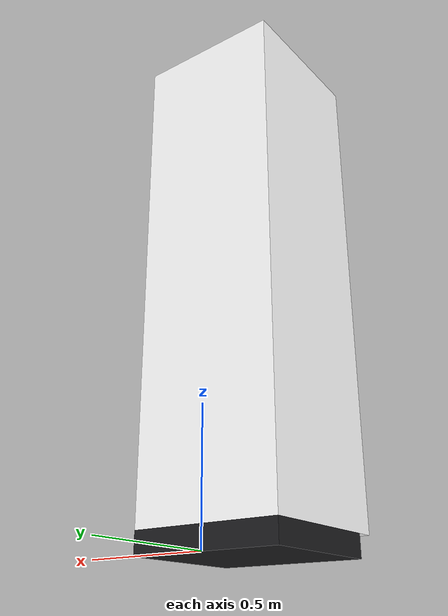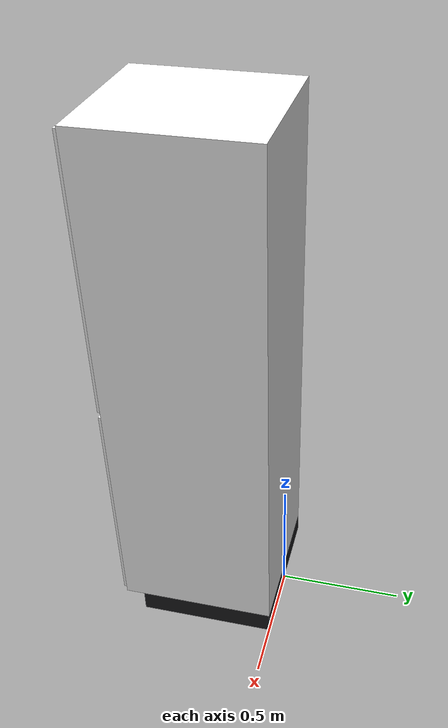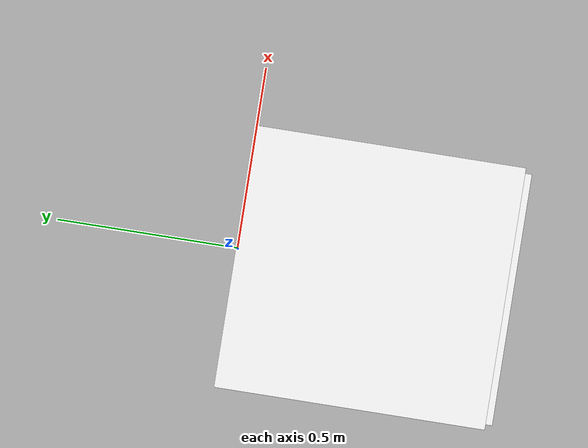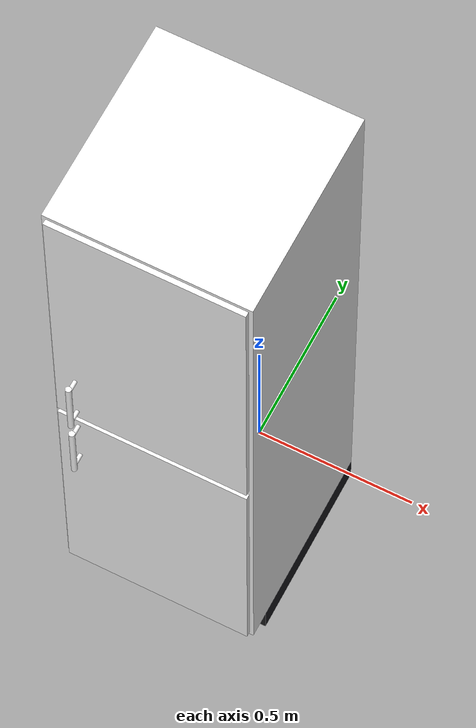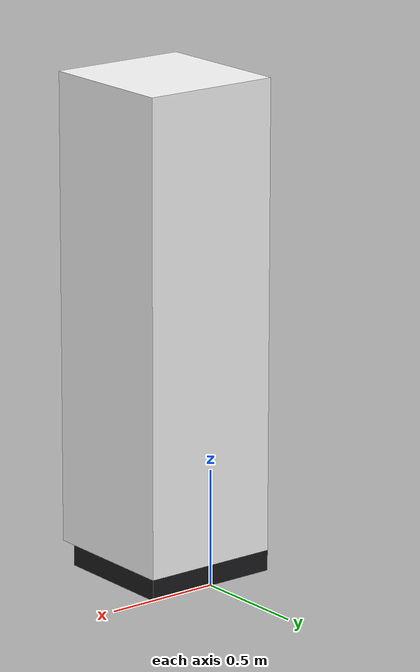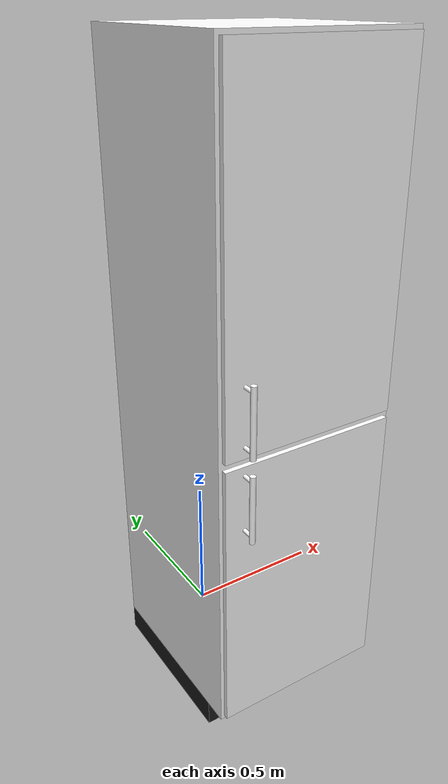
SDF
<?xml version="1.0"?>
<sdf version="1.6">
  <model name="kitchen_pantry">
    <static>true</static>
    <link name="link">
      <visual name="toe_kick">
        <pose>0 -0.272 0.0445 0 0 0</pose>
        <geometry><box><size>0.6 0.544 0.089</size></box></geometry>
        <material><ambient>0.11 0.11 0.12 1</ambient><diffuse>0.11 0.11 0.12 1</diffuse><specular>0.05 0.05 0.05 1</specular><emissive>0 0 0 1</emissive></material>
      </visual>
      <visual name="carcass">
        <pose>0 -0.31 1.0945 0 0 0</pose>
        <geometry><box><size>0.6 0.62 2.011</size></box></geometry>
        <material><pbr><metal><albedo_map>textures/wood.png</albedo_map><metalness>0.0</metalness><roughness>0.75</roughness></metal></pbr><ambient>1 1 1 1</ambient><diffuse>1 1 1 1</diffuse><specular>0.25 0.25 0.25 1</specular><emissive>0 0 0 1</emissive></material>
      </visual>
      <visual name="door0">
        <pose>0 -0.628 0.5605 0 0 0</pose>
        <geometry><box><size>0.576 0.016 0.919</size></box></geometry>
        <material><pbr><metal><albedo_map>textures/wood.png</albedo_map><metalness>0.0</metalness><roughness>0.55</roughness></metal></pbr><ambient>1 1 1 1</ambient><diffuse>1 1 1 1</diffuse><specular>0.25 0.25 0.25 1</specular><emissive>0 0 0 1</emissive></material>
      </visual>
      <visual name="door1">
        <pose>0 -0.628 1.566 0 0 0</pose>
        <geometry><box><size>0.576 0.016 1.044</size></box></geometry>
        <material><pbr><metal><albedo_map>textures/wood.png</albedo_map><metalness>0.0</metalness><roughness>0.55</roughness></metal></pbr><ambient>1 1 1 1</ambient><diffuse>1 1 1 1</diffuse><specular>0.25 0.25 0.25 1</specular><emissive>0 0 0 1</emissive></material>
      </visual>
      <visual name="handle_lower_bar">
        <pose>-0.225 -0.674 0.9 0 0 0</pose>
        <geometry><cylinder><radius>0.009</radius><length>0.22</length></cylinder></geometry>
        <material><pbr><metal><albedo_map>textures/stainless.png</albedo_map><metalness>0.25</metalness><roughness>0.15</roughness></metal></pbr><ambient>1 1 1 1</ambient><diffuse>1 1 1 1</diffuse><specular>1 1 1 1</specular><emissive>0 0 0 1</emissive></material>
      </visual>
      <visual name="handle_lower_post0">
        <pose>-0.225 -0.655 0.81 1.5708 0 0</pose>
        <geometry><cylinder><radius>0.0063</radius><length>0.038</length></cylinder></geometry>
        <material><pbr><metal><albedo_map>textures/stainless.png</albedo_map><metalness>0.25</metalness><roughness>0.15</roughness></metal></pbr><ambient>1 1 1 1</ambient><diffuse>1 1 1 1</diffuse><specular>1 1 1 1</specular><emissive>0 0 0 1</emissive></material>
      </visual>
      <visual name="handle_lower_post1">
        <pose>-0.225 -0.655 0.99 1.5708 0 0</pose>
        <geometry><cylinder><radius>0.0063</radius><length>0.038</length></cylinder></geometry>
        <material><pbr><metal><albedo_map>textures/stainless.png</albedo_map><metalness>0.25</metalness><roughness>0.15</roughness></metal></pbr><ambient>1 1 1 1</ambient><diffuse>1 1 1 1</diffuse><specular>1 1 1 1</specular><emissive>0 0 0 1</emissive></material>
      </visual>
      <visual name="handle_upper_bar">
        <pose>-0.225 -0.674 1.17 0 0 0</pose>
        <geometry><cylinder><radius>0.009</radius><length>0.22</length></cylinder></geometry>
        <material><pbr><metal><albedo_map>textures/stainless.png</albedo_map><metalness>0.25</metalness><roughness>0.15</roughness></metal></pbr><ambient>1 1 1 1</ambient><diffuse>1 1 1 1</diffuse><specular>1 1 1 1</specular><emissive>0 0 0 1</emissive></material>
      </visual>
      <visual name="handle_upper_post0">
        <pose>-0.225 -0.655 1.08 1.5708 0 0</pose>
        <geometry><cylinder><radius>0.0063</radius><length>0.038</length></cylinder></geometry>
        <material><pbr><metal><albedo_map>textures/stainless.png</albedo_map><metalness>0.25</metalness><roughness>0.15</roughness></metal></pbr><ambient>1 1 1 1</ambient><diffuse>1 1 1 1</diffuse><specular>1 1 1 1</specular><emissive>0 0 0 1</emissive></material>
      </visual>
      <visual name="handle_upper_post1">
        <pose>-0.225 -0.655 1.26 1.5708 0 0</pose>
        <geometry><cylinder><radius>0.0063</radius><length>0.038</length></cylinder></geometry>
        <material><pbr><metal><albedo_map>textures/stainless.png</albedo_map><metalness>0.25</metalness><roughness>0.15</roughness></metal></pbr><ambient>1 1 1 1</ambient><diffuse>1 1 1 1</diffuse><specular>1 1 1 1</specular><emissive>0 0 0 1</emissive></material>
      </visual>
      <collision name="body">
        <pose>0 -0.318 1.05 0 0 0</pose>
        <geometry><box><size>0.6 0.636 2.1</size></box></geometry>
      </collision>
    </link>
    <allow_auto_disable>1</allow_auto_disable>
  </model>
</sdf>
